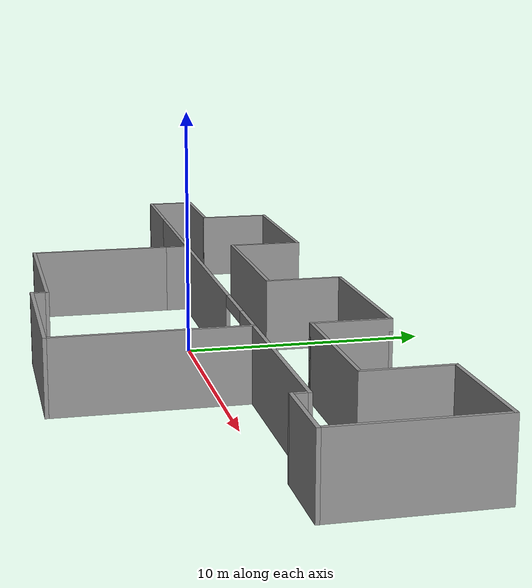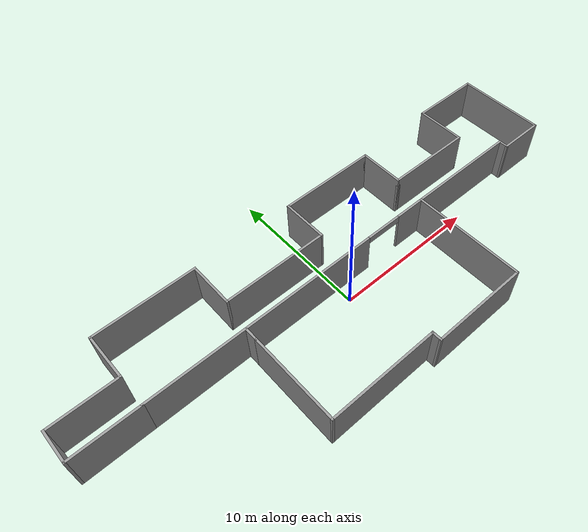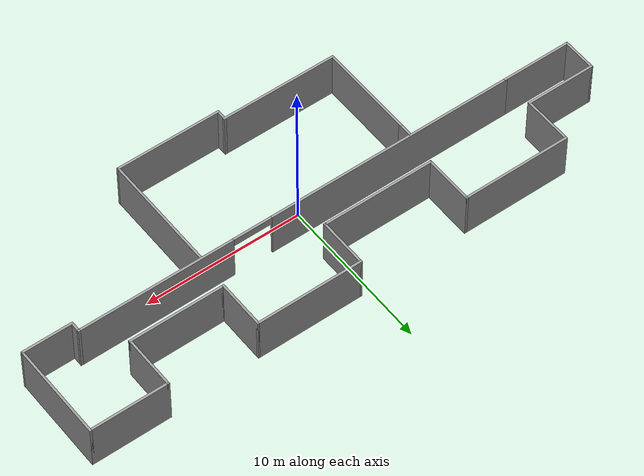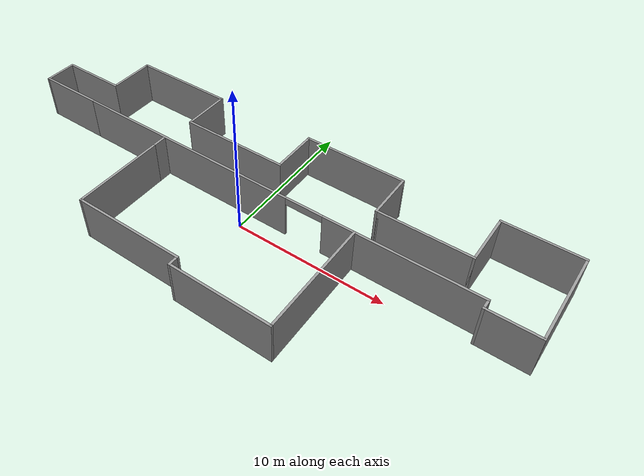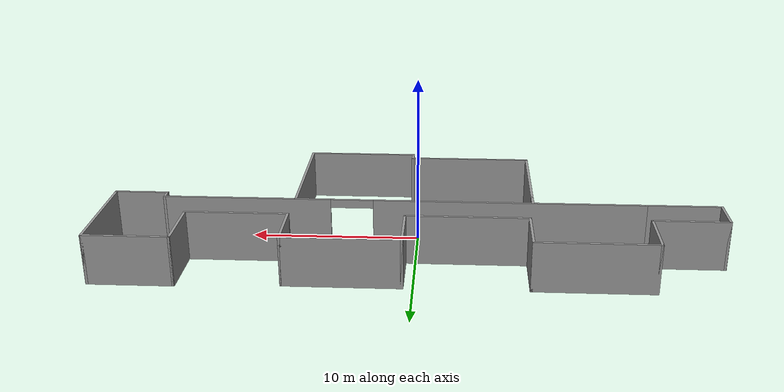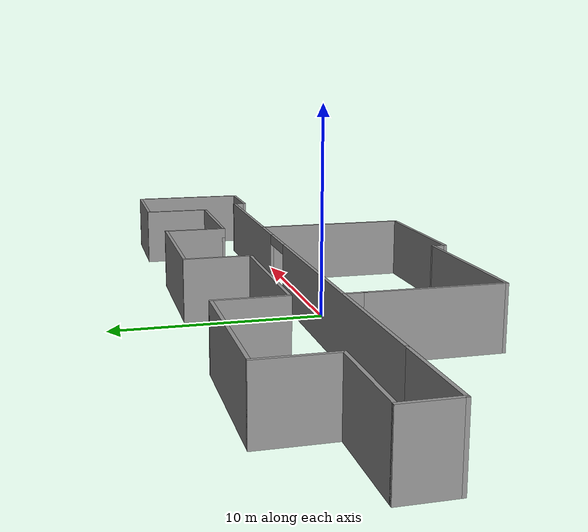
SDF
<?xml version='1.0'?>
<sdf version='1.6'>
  <model name='2ndfloor_0.0.2'>
    <pose frame=''>0.204 0.105 0 0 -0 0</pose>
    <link name='Wall_1'>
      <collision name='Wall_1_Collision'>
        <geometry>
          <box>
            <size>6 0.15 3</size>
          </box>
        </geometry>
        <pose frame=''>0 0 1.5 0 -0 0</pose>
      </collision>
      <visual name='Wall_1_Visual'>
        <pose frame=''>0 0 1.5 0 -0 0</pose>
        <geometry>
          <box>
            <size>6 0.15 3</size>
          </box>
        </geometry>
        <material>
          <script>
            <uri>file://media/materials/scripts/gazebo.material</uri>
            <name>Gazebo/Grey</name>
          </script>
          <ambient>1 1 1 1</ambient>
        </material>
        <meta>
          <layer>0</layer>
        </meta>
      </visual>
      <pose frame=''>10.125 3.201 0 0 -0 0</pose>
    </link>
    <link name='Wall_10'>
      <collision name='Wall_10_Collision'>
        <geometry>
          <box>
            <size>4.5 0.15 3</size>
          </box>
        </geometry>
        <pose frame=''>0 0 1.5 0 -0 0</pose>
      </collision>
      <visual name='Wall_10_Visual'>
        <pose frame=''>0 0 1.5 0 -0 0</pose>
        <geometry>
          <box>
            <size>4.5 0.15 3</size>
          </box>
        </geometry>
        <material>
          <script>
            <uri>file://media/materials/scripts/gazebo.material</uri>
            <name>Gazebo/Grey</name>
          </script>
          <ambient>1 1 1 1</ambient>
        </material>
        <meta>
          <layer>0</layer>
        </meta>
      </visual>
      <pose frame=''>-15.725 1.051 0 0 -0 3.14159</pose>
    </link>
    <link name='Wall_11'>
      <collision name='Wall_11_Collision'>
        <geometry>
          <box>
            <size>2.25 0.15 3</size>
          </box>
        </geometry>
        <pose frame=''>0 0 1.5 0 -0 0</pose>
      </collision>
      <visual name='Wall_11_Visual'>
        <pose frame=''>0 0 1.5 0 -0 0</pose>
        <geometry>
          <box>
            <size>2.25 0.15 3</size>
          </box>
        </geometry>
        <material>
          <script>
            <uri>file://media/materials/scripts/gazebo.material</uri>
            <name>Gazebo/Grey</name>
          </script>
          <ambient>1 1 1 1</ambient>
        </material>
        <meta>
          <layer>0</layer>
        </meta>
      </visual>
      <pose frame=''>-17.9 2.101 0 0 -0 1.5708</pose>
    </link>
    <link name='Wall_12'>
      <collision name='Wall_12_Collision'>
        <geometry>
          <box>
            <size>4.5 0.15 3</size>
          </box>
        </geometry>
        <pose frame=''>0 0 1.5 0 -0 0</pose>
      </collision>
      <visual name='Wall_12_Visual'>
        <pose frame=''>0 0 1.5 0 -0 0</pose>
        <geometry>
          <box>
            <size>4.5 0.15 3</size>
          </box>
        </geometry>
        <material>
          <script>
            <uri>file://media/materials/scripts/gazebo.material</uri>
            <name>Gazebo/Grey</name>
          </script>
          <ambient>1 1 1 1</ambient>
        </material>
        <meta>
          <layer>0</layer>
        </meta>
      </visual>
      <pose frame=''>-15.725 3.151 0 0 -0 0</pose>
    </link>
    <link name='Wall_13'>
      <collision name='Wall_13_Collision'>
        <geometry>
          <box>
            <size>3.25 0.15 3</size>
          </box>
        </geometry>
        <pose frame=''>0 0 1.5 0 -0 0</pose>
      </collision>
      <visual name='Wall_13_Visual'>
        <pose frame=''>0 0 1.5 0 -0 0</pose>
        <geometry>
          <box>
            <size>3.25 0.15 3</size>
          </box>
        </geometry>
        <material>
          <script>
            <uri>file://media/materials/scripts/gazebo.material</uri>
            <name>Gazebo/Grey</name>
          </script>
          <ambient>1 1 1 1</ambient>
        </material>
        <meta>
          <layer>0</layer>
        </meta>
      </visual>
      <pose frame=''>-13.55 4.701 0 0 -0 1.5708</pose>
    </link>
    <link name='Wall_14'>
      <collision name='Wall_14_Collision'>
        <geometry>
          <box>
            <size>7 0.15 3</size>
          </box>
        </geometry>
        <pose frame=''>0 0 1.5 0 -0 0</pose>
      </collision>
      <visual name='Wall_14_Visual'>
        <pose frame=''>0 0 1.5 0 -0 0</pose>
        <geometry>
          <box>
            <size>7 0.15 3</size>
          </box>
        </geometry>
        <material>
          <script>
            <uri>file://media/materials/scripts/gazebo.material</uri>
            <name>Gazebo/Grey</name>
          </script>
          <ambient>1 1 1 1</ambient>
        </material>
        <meta>
          <layer>0</layer>
        </meta>
      </visual>
      <pose frame=''>-10.125 6.251 0 0 -0 0</pose>
    </link>
    <link name='Wall_15'>
      <collision name='Wall_15_Collision'>
        <geometry>
          <box>
            <size>3.25 0.15 3</size>
          </box>
        </geometry>
        <pose frame=''>0 0 1.5 0 -0 0</pose>
      </collision>
      <visual name='Wall_15_Visual'>
        <pose frame=''>0 0 1.5 0 -0 0</pose>
        <geometry>
          <box>
            <size>3.25 0.15 3</size>
          </box>
        </geometry>
        <material>
          <script>
            <uri>file://media/materials/scripts/gazebo.material</uri>
            <name>Gazebo/Grey</name>
          </script>
          <ambient>1 1 1 1</ambient>
        </material>
        <meta>
          <layer>0</layer>
        </meta>
      </visual>
      <pose frame=''>-6.7 4.701 0 0 -0 -1.5708</pose>
    </link>
    <link name='Wall_16'>
      <collision name='Wall_16_Collision'>
        <geometry>
          <box>
            <size>7.25 0.15 3</size>
          </box>
        </geometry>
        <pose frame=''>0 0 1.5 0 -0 0</pose>
      </collision>
      <visual name='Wall_16_Visual'>
        <pose frame=''>0 0 1.5 0 -0 0</pose>
        <geometry>
          <box>
            <size>7.25 0.15 3</size>
          </box>
        </geometry>
        <material>
          <script>
            <uri>file://media/materials/scripts/gazebo.material</uri>
            <name>Gazebo/Grey</name>
          </script>
          <ambient>1 1 1 1</ambient>
        </material>
        <meta>
          <layer>0</layer>
        </meta>
      </visual>
      <pose frame=''>-3.15 3.151 0 0 -0 0</pose>
    </link>
    <link name='Wall_17'>
      <collision name='Wall_17_Collision'>
        <geometry>
          <box>
            <size>3.25 0.15 3</size>
          </box>
        </geometry>
        <pose frame=''>0 0 1.5 0 -0 0</pose>
      </collision>
      <visual name='Wall_17_Visual'>
        <pose frame=''>0 0 1.5 0 -0 0</pose>
        <geometry>
          <box>
            <size>3.25 0.15 3</size>
          </box>
        </geometry>
        <material>
          <script>
            <uri>file://media/materials/scripts/gazebo.material</uri>
            <name>Gazebo/Grey</name>
          </script>
          <ambient>1 1 1 1</ambient>
        </material>
        <meta>
          <layer>0</layer>
        </meta>
      </visual>
      <pose frame=''>0.399999 4.701 0 0 -0 1.5708</pose>
    </link>
    <link name='Wall_2'>
      <collision name='Wall_2_Collision'>
        <geometry>
          <box>
            <size>3.5 0.15 3</size>
          </box>
        </geometry>
        <pose frame=''>0 0 1.5 0 -0 0</pose>
      </collision>
      <visual name='Wall_2_Visual'>
        <pose frame=''>0 0 1.5 0 -0 0</pose>
        <geometry>
          <box>
            <size>3.5 0.15 3</size>
          </box>
        </geometry>
        <material>
          <script>
            <uri>file://media/materials/scripts/gazebo.material</uri>
            <name>Gazebo/Grey</name>
          </script>
          <ambient>1 1 1 1</ambient>
        </material>
        <meta>
          <layer>0</layer>
        </meta>
      </visual>
      <pose frame=''>13.05 4.876 0 0 -0 1.5708</pose>
    </link>
    <link name='Wall_22'>
      <collision name='Wall_22_Collision'>
        <geometry>
          <box>
            <size>6.75 0.15 3</size>
          </box>
        </geometry>
        <pose frame=''>0 0 1.5 0 -0 0</pose>
      </collision>
      <visual name='Wall_22_Visual'>
        <pose frame=''>0 0 1.5 0 -0 0</pose>
        <geometry>
          <box>
            <size>6.75 0.15 3</size>
          </box>
        </geometry>
        <material>
          <script>
            <uri>file://media/materials/scripts/gazebo.material</uri>
            <name>Gazebo/Grey</name>
          </script>
          <ambient>1 1 1 1</ambient>
        </material>
        <meta>
          <layer>0</layer>
        </meta>
      </visual>
      <pose frame=''>3.7 6.251 0 0 -0 0</pose>
    </link>
    <link name='Wall_26'>
      <collision name='Wall_26_Collision'>
        <geometry>
          <box>
            <size>0.25 0.15 2.5</size>
          </box>
        </geometry>
        <pose frame=''>0 0 1.25 0 -0 0</pose>
      </collision>
      <visual name='Wall_26_Visual'>
        <pose frame=''>0 0 1.25 0 -0 0</pose>
        <geometry>
          <box>
            <size>0.25 0.15 2.5</size>
          </box>
        </geometry>
        <material>
          <script>
            <uri>file://media/materials/scripts/gazebo.material</uri>
            <name>Gazebo/Grey</name>
          </script>
          <ambient>1 1 1 1</ambient>
        </material>
        <meta>
          <layer>0</layer>
        </meta>
      </visual>
      <pose frame=''>7.05 6.251 0 0 -0 0</pose>
    </link>
    <link name='Wall_28'>
      <collision name='Wall_28_Collision'>
        <geometry>
          <box>
            <size>0.15 0.15 2.5</size>
          </box>
        </geometry>
        <pose frame=''>0 0 1.25 0 -0 0</pose>
      </collision>
      <visual name='Wall_28_Visual'>
        <pose frame=''>0 0 1.25 0 -0 0</pose>
        <geometry>
          <box>
            <size>0.15 0.15 2.5</size>
          </box>
        </geometry>
        <material>
          <script>
            <uri>file://media/materials/scripts/gazebo.material</uri>
            <name>Gazebo/Grey</name>
          </script>
          <ambient>1 1 1 1</ambient>
        </material>
        <meta>
          <layer>0</layer>
        </meta>
      </visual>
      <pose frame=''>7.2 3.201 0 0 -0 0</pose>
    </link>
    <link name='Wall_29'>
      <collision name='Wall_29_Collision'>
        <geometry>
          <box>
            <size>0.15 0.15 2.5</size>
          </box>
        </geometry>
        <pose frame=''>0 0 1.25 0 -0 0</pose>
      </collision>
      <visual name='Wall_29_Visual'>
        <pose frame=''>0 0 1.25 0 -0 0</pose>
        <geometry>
          <box>
            <size>0.15 0.15 2.5</size>
          </box>
        </geometry>
        <material>
          <script>
            <uri>file://media/materials/scripts/gazebo.material</uri>
            <name>Gazebo/Grey</name>
          </script>
          <ambient>1 1 1 1</ambient>
        </material>
        <meta>
          <layer>0</layer>
        </meta>
      </visual>
      <pose frame=''>7.2 3.201 0 0 -0 0</pose>
    </link>
    <link name='Wall_3'>
      <collision name='Wall_3_Collision'>
        <geometry>
          <box>
            <size>5 0.15 3</size>
          </box>
        </geometry>
        <pose frame=''>0 0 1.5 0 -0 0</pose>
      </collision>
      <visual name='Wall_3_Visual'>
        <pose frame=''>0 0 1.5 0 -0 0</pose>
        <geometry>
          <box>
            <size>5 0.15 3</size>
          </box>
        </geometry>
        <material>
          <script>
            <uri>file://media/materials/scripts/gazebo.material</uri>
            <name>Gazebo/Grey</name>
          </script>
          <ambient>1 1 1 1</ambient>
        </material>
        <meta>
          <layer>0</layer>
        </meta>
      </visual>
      <pose frame=''>15.475 6.551 0 0 -0 0</pose>
    </link>
    <link name='Wall_30'>
      <collision name='Wall_30_Collision'>
        <geometry>
          <box>
            <size>0.15 0.15 2.5</size>
          </box>
        </geometry>
        <pose frame=''>0 0 1.25 0 -0 0</pose>
      </collision>
      <visual name='Wall_30_Visual'>
        <pose frame=''>0 0 1.25 0 -0 0</pose>
        <geometry>
          <box>
            <size>0.15 0.15 2.5</size>
          </box>
        </geometry>
        <material>
          <script>
            <uri>file://media/materials/scripts/gazebo.material</uri>
            <name>Gazebo/Grey</name>
          </script>
          <ambient>1 1 1 1</ambient>
        </material>
        <meta>
          <layer>0</layer>
        </meta>
      </visual>
      <pose frame=''>7.2 3.201 0 0 -0 0</pose>
    </link>
    <link name='Wall_31'>
      <collision name='Wall_31_Collision'>
        <geometry>
          <box>
            <size>0.16 0.15 2.5</size>
          </box>
        </geometry>
        <pose frame=''>0 0 1.25 0 -0 0</pose>
      </collision>
      <visual name='Wall_31_Visual'>
        <pose frame=''>0 0 1.25 0 -0 0</pose>
        <geometry>
          <box>
            <size>0.16 0.15 2.5</size>
          </box>
        </geometry>
        <material>
          <script>
            <uri>file://media/materials/scripts/gazebo.material</uri>
            <name>Gazebo/Grey</name>
          </script>
          <ambient>1 1 1 1</ambient>
        </material>
        <meta>
          <layer>0</layer>
        </meta>
      </visual>
      <pose frame=''>7.20497 3.20099 0 0 -0 -0.001416</pose>
    </link>
    <link name='Wall_33'>
      <collision name='Wall_33_Collision'>
        <geometry>
          <box>
            <size>0.25 0.15 2.5</size>
          </box>
        </geometry>
        <pose frame=''>0 0 1.25 0 -0 0</pose>
      </collision>
      <visual name='Wall_33_Visual'>
        <pose frame=''>0 0 1.25 0 -0 0</pose>
        <geometry>
          <box>
            <size>0.25 0.15 2.5</size>
          </box>
        </geometry>
        <material>
          <script>
            <uri>file://media/materials/scripts/gazebo.material</uri>
            <name>Gazebo/Grey</name>
          </script>
          <ambient>1 1 1 1</ambient>
        </material>
        <meta>
          <layer>0</layer>
        </meta>
      </visual>
      <pose frame=''>7.15 3.201 0 0 -0 3.14159</pose>
    </link>
    <link name='Wall_34'>
      <collision name='Wall_34_Collision'>
        <geometry>
          <box>
            <size>3.2 0.15 3</size>
          </box>
        </geometry>
        <pose frame=''>0 0 1.5 0 -0 0</pose>
      </collision>
      <visual name='Wall_34_Visual'>
        <pose frame=''>0 0 1.5 0 -0 0</pose>
        <geometry>
          <box>
            <size>3.2 0.15 3</size>
          </box>
        </geometry>
        <material>
          <script>
            <uri>file://media/materials/scripts/gazebo.material</uri>
            <name>Gazebo/Grey</name>
          </script>
          <ambient>1 1 1 1</ambient>
        </material>
        <meta>
          <layer>0</layer>
        </meta>
      </visual>
      <pose frame=''>7.1 4.726 0 0 -0 1.5708</pose>
    </link>
    <link name='Wall_36'>
      <collision name='Wall_36_Collision'>
        <geometry>
          <box>
            <size>7.75 0.15 3</size>
          </box>
        </geometry>
        <pose frame=''>0 0 1.5 0 -0 0</pose>
      </collision>
      <visual name='Wall_36_Visual'>
        <pose frame=''>0 0 1.5 0 -0 0</pose>
        <geometry>
          <box>
            <size>7.75 0.15 3</size>
          </box>
        </geometry>
        <material>
          <script>
            <uri>file://media/materials/scripts/gazebo.material</uri>
            <name>Gazebo/Grey</name>
          </script>
          <ambient>1 1 1 1</ambient>
        </material>
        <meta>
          <layer>0</layer>
        </meta>
      </visual>
      <pose frame=''>6.965 -2.751 0 0 -0 -1.5708</pose>
    </link>
    <link name='Wall_37'>
      <collision name='Wall_37_Collision'>
        <geometry>
          <box>
            <size>6.75 0.15 3</size>
          </box>
        </geometry>
        <pose frame=''>0 0 1.5 0 -0 0</pose>
      </collision>
      <visual name='Wall_37_Visual'>
        <pose frame=''>0 0 1.5 0 -0 0</pose>
        <geometry>
          <box>
            <size>6.75 0.15 3</size>
          </box>
        </geometry>
        <material>
          <script>
            <uri>file://media/materials/scripts/gazebo.material</uri>
            <name>Gazebo/Grey</name>
          </script>
          <ambient>1 1 1 1</ambient>
        </material>
        <meta>
          <layer>0</layer>
        </meta>
      </visual>
      <pose frame=''>3.665 -6.551 0 0 -0 3.14159</pose>
    </link>
    <link name='Wall_38'>
      <collision name='Wall_38_Collision'>
        <geometry>
          <box>
            <size>0.75 0.15 3</size>
          </box>
        </geometry>
        <pose frame=''>0 0 1.5 0 -0 0</pose>
      </collision>
      <visual name='Wall_38_Visual'>
        <pose frame=''>0 0 1.5 0 -0 0</pose>
        <geometry>
          <box>
            <size>0.75 0.15 3</size>
          </box>
        </geometry>
        <material>
          <script>
            <uri>file://media/materials/scripts/gazebo.material</uri>
            <name>Gazebo/Grey</name>
          </script>
          <ambient>1 1 1 1</ambient>
        </material>
        <meta>
          <layer>0</layer>
        </meta>
      </visual>
      <pose frame=''>0.365 -6.251 0 0 -0 1.5708</pose>
    </link>
    <link name='Wall_39'>
      <collision name='Wall_39_Collision'>
        <geometry>
          <box>
            <size>7.5 0.15 3</size>
          </box>
        </geometry>
        <pose frame=''>0 0 1.5 0 -0 0</pose>
      </collision>
      <visual name='Wall_39_Visual'>
        <pose frame=''>0 0 1.5 0 -0 0</pose>
        <geometry>
          <box>
            <size>7.5 0.15 3</size>
          </box>
        </geometry>
        <material>
          <script>
            <uri>file://media/materials/scripts/gazebo.material</uri>
            <name>Gazebo/Grey</name>
          </script>
          <ambient>1 1 1 1</ambient>
        </material>
        <meta>
          <layer>0</layer>
        </meta>
      </visual>
      <pose frame=''>-3.31 -5.951 0 0 -0 3.14159</pose>
    </link>
    <link name='Wall_44'>
      <collision name='Wall_44_Collision'>
        <geometry>
          <box>
            <size>6.25 0.15 3</size>
          </box>
        </geometry>
        <pose frame=''>0 0 1.5 0 -0 0</pose>
      </collision>
      <visual name='Wall_44_Visual'>
        <pose frame=''>0 0 1.5 0 -0 0</pose>
        <geometry>
          <box>
            <size>6.25 0.15 3</size>
          </box>
        </geometry>
        <material>
          <script>
            <uri>file://media/materials/scripts/gazebo.material</uri>
            <name>Gazebo/Grey</name>
          </script>
          <ambient>1 1 1 1</ambient>
        </material>
        <meta>
          <layer>0</layer>
        </meta>
      </visual>
      <pose frame=''>-6.985 -2.901 0 0 -0 1.5708</pose>
    </link>
    <link name='Wall_45'>
      <collision name='Wall_45_Collision'>
        <geometry>
          <box>
            <size>1 0.15 3</size>
          </box>
        </geometry>
        <pose frame=''>0 0 1.5 0 -0 0</pose>
      </collision>
      <visual name='Wall_45_Visual'>
        <pose frame=''>0 0 1.5 0 -0 0</pose>
        <geometry>
          <box>
            <size>1 0.15 3</size>
          </box>
        </geometry>
        <material>
          <script>
            <uri>file://media/materials/scripts/gazebo.material</uri>
            <name>Gazebo/Grey</name>
          </script>
          <ambient>1 1 1 1</ambient>
        </material>
        <meta>
          <layer>0</layer>
        </meta>
      </visual>
      <pose frame=''>-6.985 0.574 0 0 -0 1.5708</pose>
    </link>
    <link name='Wall_6'>
      <collision name='Wall_6_Collision'>
        <geometry>
          <box>
            <size>6.25 0.15 3</size>
          </box>
        </geometry>
        <pose frame=''>0 0 1.5 0 -0 0</pose>
      </collision>
      <visual name='Wall_6_Visual'>
        <pose frame=''>0 0 1.5 0 -0 0</pose>
        <geometry>
          <box>
            <size>6.25 0.15 3</size>
          </box>
        </geometry>
        <material>
          <script>
            <uri>file://media/materials/scripts/gazebo.material</uri>
            <name>Gazebo/Grey</name>
          </script>
          <ambient>1 1 1 1</ambient>
        </material>
        <meta>
          <layer>0</layer>
        </meta>
      </visual>
      <pose frame=''>17.9 3.501 0 0 -0 -1.5708</pose>
    </link>
    <link name='Wall_7'>
      <collision name='Wall_7_Collision'>
        <geometry>
          <box>
            <size>3.25 0.15 3</size>
          </box>
        </geometry>
        <pose frame=''>0 0 1.5 0 -0 0</pose>
      </collision>
      <visual name='Wall_7_Visual'>
        <pose frame=''>0 0 1.5 0 -0 0</pose>
        <geometry>
          <box>
            <size>3.25 0.15 3</size>
          </box>
        </geometry>
        <material>
          <script>
            <uri>file://media/materials/scripts/gazebo.material</uri>
            <name>Gazebo/Grey</name>
          </script>
          <ambient>1 1 1 1</ambient>
        </material>
        <meta>
          <layer>0</layer>
        </meta>
      </visual>
      <pose frame=''>16.35 0.451 0 0 -0 3.14159</pose>
    </link>
    <link name='Wall_8'>
      <collision name='Wall_8_Collision'>
        <geometry>
          <box>
            <size>0.75 0.15 3</size>
          </box>
        </geometry>
        <pose frame=''>0 0 1.5 0 -0 0</pose>
      </collision>
      <visual name='Wall_8_Visual'>
        <pose frame=''>0 0 1.5 0 -0 0</pose>
        <geometry>
          <box>
            <size>0.75 0.15 3</size>
          </box>
        </geometry>
        <material>
          <script>
            <uri>file://media/materials/scripts/gazebo.material</uri>
            <name>Gazebo/Grey</name>
          </script>
          <ambient>1 1 1 1</ambient>
        </material>
        <meta>
          <layer>0</layer>
        </meta>
      </visual>
      <pose frame=''>14.8 0.751 0 0 -0 1.5708</pose>
    </link>
    <link name='Wall_9'>
      <pose frame=''>0.625 1.051 0 0 -0 3.14159</pose>
      <visual name='Wall_9_Visual_0'>
        <pose frame=''>-9.256 0 1.5 0 -0 0</pose>
        <geometry>
          <box>
            <size>9.98801 0.15 3</size>
          </box>
        </geometry>
        <material>
          <script>
            <uri>file://media/materials/scripts/gazebo.material</uri>
            <name>Gazebo/Grey</name>
          </script>
          <ambient>1 1 1 1</ambient>
        </material>
        <meta>
          <layer>0</layer>
        </meta>
      </visual>
      <collision name='Wall_9_Collision_0'>
        <geometry>
          <box>
            <size>9.98801 0.15 3</size>
          </box>
        </geometry>
        <pose frame=''>-9.256 0 1.5 0 -0 0</pose>
      </collision>
      <visual name='Wall_9_Visual_1'>
        <pose frame=''>6.244 0 1.5 0 -0 0</pose>
        <geometry>
          <box>
            <size>16.012 0.15 3</size>
          </box>
        </geometry>
        <material>
          <script>
            <uri>file://media/materials/scripts/gazebo.material</uri>
            <name>Gazebo/Grey</name>
          </script>
          <ambient>1 1 1 1</ambient>
        </material>
        <meta>
          <layer>0</layer>
        </meta>
      </visual>
      <collision name='Wall_9_Collision_1'>
        <geometry>
          <box>
            <size>16.012 0.15 3</size>
          </box>
        </geometry>
        <pose frame=''>6.244 0 1.5 0 -0 0</pose>
      </collision>
      <visual name='Wall_9_Visual_2'>
        <pose frame=''>-3.01199 0 2.75 0 -0 0</pose>
        <geometry>
          <box>
            <size>2.5 0.15 0.5</size>
          </box>
        </geometry>
        <material>
          <script>
            <uri>file://media/materials/scripts/gazebo.material</uri>
            <name>Gazebo/Grey</name>
          </script>
          <ambient>1 1 1 1</ambient>
        </material>
        <meta>
          <layer>0</layer>
        </meta>
      </visual>
      <collision name='Wall_9_Collision_2'>
        <geometry>
          <box>
            <size>2.5 0.15 0.5</size>
          </box>
        </geometry>
        <pose frame=''>-3.01199 0 2.75 0 -0 0</pose>
      </collision>
    </link>
    <static>1</static>
  </model>
</sdf>
